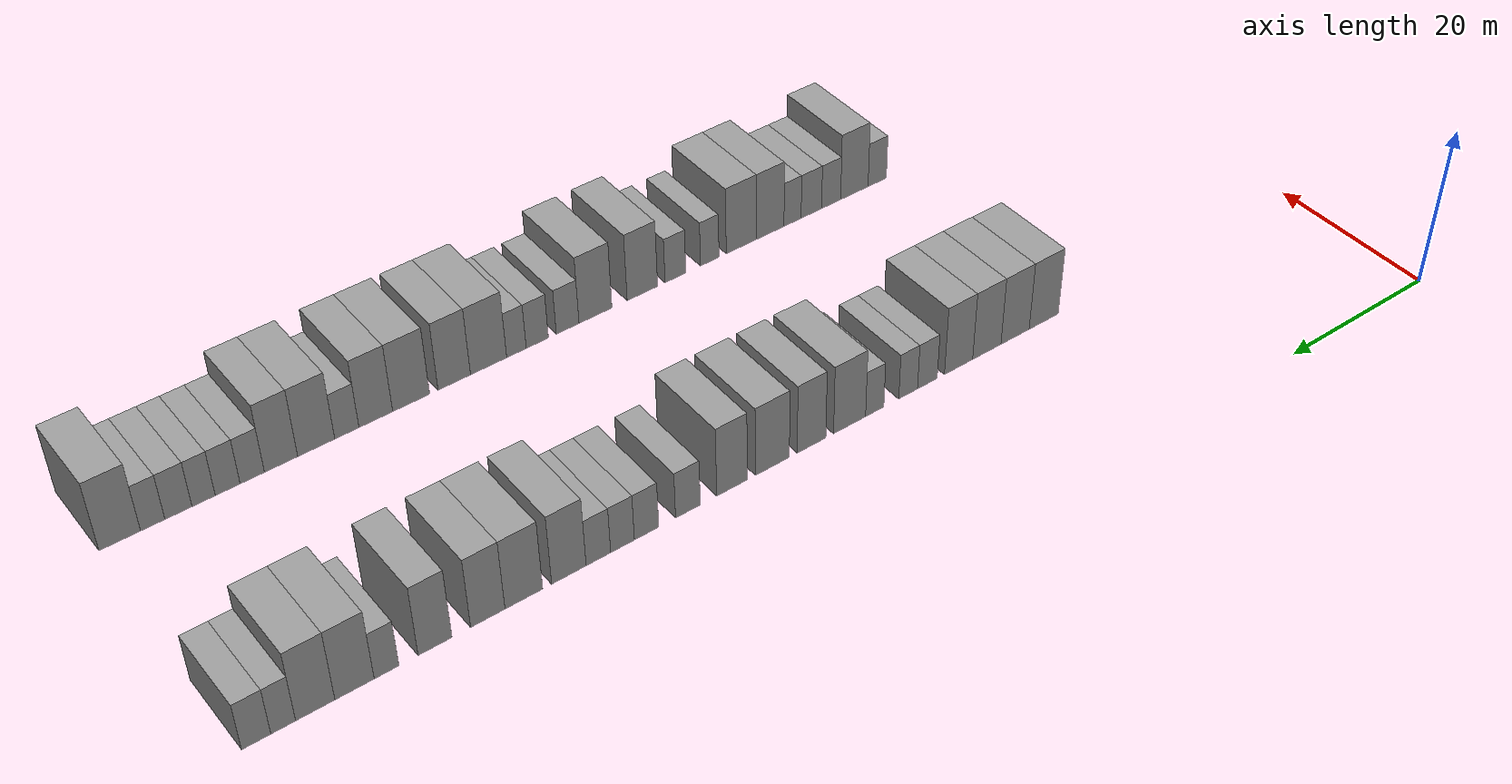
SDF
<sdf version="1.6">
 <world name="default">
  <model name="building_64">
   <static>1</static>
   <pose>25.0000 37.3057 0 0.000000 0.000000 0.000000</pose>
   <link name="link">
    <pose>0 0 4.50 0 0 0</pose>
    <collision name="collision"><geometry><box><size>10.0000 4.2083 9.0000</size></box></geometry></collision>
    <visual name="visual">
     <cast_shadows>0</cast_shadows>
     <geometry><box><size>10.0000 4.2083 9.0000</size></box></geometry>
     <material>
      <script>
       <uri>model://grey_wall/materials/scripts</uri>
       <uri>model://grey_wall/materials/textures</uri>
       <name>vrc/grey_wall</name>
      </script>
     </material>
    </visual>
   </link>
  </model>
  <model name="building_65">
   <static>1</static>
   <pose>25.0000 41.4210 0 0.000000 0.000000 0.000000</pose>
   <link name="link">
    <pose>0 0 4.50 0 0 0</pose>
    <collision name="collision"><geometry><box><size>10.0000 4.0222 9.0000</size></box></geometry></collision>
    <visual name="visual">
     <cast_shadows>0</cast_shadows>
     <geometry><box><size>10.0000 4.0222 9.0000</size></box></geometry>
     <material>
      <script>
       <uri>model://grey_wall/materials/scripts</uri>
       <uri>model://grey_wall/materials/textures</uri>
       <name>vrc/grey_wall</name>
      </script>
     </material>
    </visual>
   </link>
  </model>
  <model name="building_66">
   <static>1</static>
   <pose>25.0000 45.4222 0 0.000000 0.000000 0.000000</pose>
   <link name="link">
    <pose>0 0 4.50 0 0 0</pose>
    <collision name="collision"><geometry><box><size>10.0000 3.9803 9.0000</size></box></geometry></collision>
    <visual name="visual">
     <cast_shadows>0</cast_shadows>
     <geometry><box><size>10.0000 3.9803 9.0000</size></box></geometry>
     <material>
      <script>
       <uri>model://grey_wall/materials/scripts</uri>
       <uri>model://grey_wall/materials/textures</uri>
       <name>vrc/grey_wall</name>
      </script>
     </material>
    </visual>
   </link>
  </model>
  <model name="building_67">
   <static>1</static>
   <pose>25.0000 49.3647 0 0.000000 0.000000 0.000000</pose>
   <link name="link">
    <pose>0 0 4.50 0 0 0</pose>
    <collision name="collision"><geometry><box><size>10.0000 3.9045 9.0000</size></box></geometry></collision>
    <visual name="visual">
     <cast_shadows>0</cast_shadows>
     <geometry><box><size>10.0000 3.9045 9.0000</size></box></geometry>
     <material>
      <script>
       <uri>model://grey_wall/materials/scripts</uri>
       <uri>model://grey_wall/materials/textures</uri>
       <name>vrc/grey_wall</name>
      </script>
     </material>
    </visual>
   </link>
  </model>
  <model name="building_68">
   <static>1</static>
   <pose>25.0000 53.6548 0 0.000000 0.000000 0.000000</pose>
   <link name="link">
    <pose>0 0 3.00 0 0 0</pose>
    <collision name="collision"><geometry><box><size>10.0000 2.6757 6.0000</size></box></geometry></collision>
    <visual name="visual">
     <cast_shadows>0</cast_shadows>
     <geometry><box><size>10.0000 2.6757 6.0000</size></box></geometry>
     <material>
      <script>
       <uri>model://grey_wall/materials/scripts</uri>
       <uri>model://grey_wall/materials/textures</uri>
       <name>vrc/grey_wall</name>
      </script>
     </material>
    </visual>
   </link>
  </model>
  <model name="building_69">
   <static>1</static>
   <pose>25.0000 56.2547 0 0.000000 0.000000 0.000000</pose>
   <link name="link">
    <pose>0 0 3.00 0 0 0</pose>
    <collision name="collision"><geometry><box><size>10.0000 2.5243 6.0000</size></box></geometry></collision>
    <visual name="visual">
     <cast_shadows>0</cast_shadows>
     <geometry><box><size>10.0000 2.5243 6.0000</size></box></geometry>
     <material>
      <script>
       <uri>model://grey_wall/materials/scripts</uri>
       <uri>model://grey_wall/materials/textures</uri>
       <name>vrc/grey_wall</name>
      </script>
     </material>
    </visual>
   </link>
  </model>
  <model name="building_70">
   <static>1</static>
   <pose>25.0000 60.7227 0 0.000000 0.000000 0.000000</pose>
   <link name="link">
    <pose>0 0 3.00 0 0 0</pose>
    <collision name="collision"><geometry><box><size>10.0000 2.4117 6.0000</size></box></geometry></collision>
    <visual name="visual">
     <cast_shadows>0</cast_shadows>
     <geometry><box><size>10.0000 2.4117 6.0000</size></box></geometry>
     <material>
      <script>
       <uri>model://grey_wall/materials/scripts</uri>
       <uri>model://grey_wall/materials/textures</uri>
       <name>vrc/grey_wall</name>
      </script>
     </material>
    </visual>
   </link>
  </model>
  <model name="building_71">
   <static>1</static>
   <pose>25.0000 64.0169 0 0.000000 0.000000 0.000000</pose>
   <link name="link">
    <pose>0 0 4.50 0 0 0</pose>
    <collision name="collision"><geometry><box><size>10.0000 4.1768 9.0000</size></box></geometry></collision>
    <visual name="visual">
     <cast_shadows>0</cast_shadows>
     <geometry><box><size>10.0000 4.1768 9.0000</size></box></geometry>
     <material>
      <script>
       <uri>model://grey_wall/materials/scripts</uri>
       <uri>model://grey_wall/materials/textures</uri>
       <name>vrc/grey_wall</name>
      </script>
     </material>
    </visual>
   </link>
  </model>
  <model name="building_72">
   <static>1</static>
   <pose>25.0000 68.9318 0 0.000000 0.000000 0.000000</pose>
   <link name="link">
    <pose>0 0 4.50 0 0 0</pose>
    <collision name="collision"><geometry><box><size>10.0000 3.6529 9.0000</size></box></geometry></collision>
    <visual name="visual">
     <cast_shadows>0</cast_shadows>
     <geometry><box><size>10.0000 3.6529 9.0000</size></box></geometry>
     <material>
      <script>
       <uri>model://grey_wall/materials/scripts</uri>
       <uri>model://grey_wall/materials/textures</uri>
       <name>vrc/grey_wall</name>
      </script>
     </material>
    </visual>
   </link>
  </model>
  <model name="building_73">
   <static>1</static>
   <pose>25.0000 73.8826 0 0.000000 0.000000 0.000000</pose>
   <link name="link">
    <pose>0 0 4.50 0 0 0</pose>
    <collision name="collision"><geometry><box><size>10.0000 4.2488 9.0000</size></box></geometry></collision>
    <visual name="visual">
     <cast_shadows>0</cast_shadows>
     <geometry><box><size>10.0000 4.2488 9.0000</size></box></geometry>
     <material>
      <script>
       <uri>model://grey_wall/materials/scripts</uri>
       <uri>model://grey_wall/materials/textures</uri>
       <name>vrc/grey_wall</name>
      </script>
     </material>
    </visual>
   </link>
  </model>
  <model name="building_74">
   <static>1</static>
   <pose>25.0000 78.8951 0 0.000000 0.000000 0.000000</pose>
   <link name="link">
    <pose>0 0 4.50 0 0 0</pose>
    <collision name="collision"><geometry><box><size>10.0000 3.7763 9.0000</size></box></geometry></collision>
    <visual name="visual">
     <cast_shadows>0</cast_shadows>
     <geometry><box><size>10.0000 3.7763 9.0000</size></box></geometry>
     <material>
      <script>
       <uri>model://grey_wall/materials/scripts</uri>
       <uri>model://grey_wall/materials/textures</uri>
       <name>vrc/grey_wall</name>
      </script>
     </material>
    </visual>
   </link>
  </model>
  <model name="building_75">
   <static>1</static>
   <pose>25.0000 84.2677 0 0.000000 0.000000 0.000000</pose>
   <link name="link">
    <pose>0 0 3.00 0 0 0</pose>
    <collision name="collision"><geometry><box><size>10.0000 2.9688 6.0000</size></box></geometry></collision>
    <visual name="visual">
     <cast_shadows>0</cast_shadows>
     <geometry><box><size>10.0000 2.9688 6.0000</size></box></geometry>
     <material>
      <script>
       <uri>model://grey_wall/materials/scripts</uri>
       <uri>model://grey_wall/materials/textures</uri>
       <name>vrc/grey_wall</name>
      </script>
     </material>
    </visual>
   </link>
  </model>
  <model name="building_76">
   <static>1</static>
   <pose>25.0000 89.1856 0 0.000000 0.000000 0.000000</pose>
   <link name="link">
    <pose>0 0 3.00 0 0 0</pose>
    <collision name="collision"><geometry><box><size>10.0000 2.8670 6.0000</size></box></geometry></collision>
    <visual name="visual">
     <cast_shadows>0</cast_shadows>
     <geometry><box><size>10.0000 2.8670 6.0000</size></box></geometry>
     <material>
      <script>
       <uri>model://grey_wall/materials/scripts</uri>
       <uri>model://grey_wall/materials/textures</uri>
       <name>vrc/grey_wall</name>
      </script>
     </material>
    </visual>
   </link>
  </model>
  <model name="building_77">
   <static>1</static>
   <pose>25.0000 91.9972 0 0.000000 0.000000 0.000000</pose>
   <link name="link">
    <pose>0 0 3.00 0 0 0</pose>
    <collision name="collision"><geometry><box><size>10.0000 2.7563 6.0000</size></box></geometry></collision>
    <visual name="visual">
     <cast_shadows>0</cast_shadows>
     <geometry><box><size>10.0000 2.7563 6.0000</size></box></geometry>
     <material>
      <script>
       <uri>model://grey_wall/materials/scripts</uri>
       <uri>model://grey_wall/materials/textures</uri>
       <name>vrc/grey_wall</name>
      </script>
     </material>
    </visual>
   </link>
  </model>
  <model name="building_78">
   <static>1</static>
   <pose>25.0000 94.7882 0 0.000000 0.000000 0.000000</pose>
   <link name="link">
    <pose>0 0 3.00 0 0 0</pose>
    <collision name="collision"><geometry><box><size>10.0000 2.8256 6.0000</size></box></geometry></collision>
    <visual name="visual">
     <cast_shadows>0</cast_shadows>
     <geometry><box><size>10.0000 2.8256 6.0000</size></box></geometry>
     <material>
      <script>
       <uri>model://grey_wall/materials/scripts</uri>
       <uri>model://grey_wall/materials/textures</uri>
       <name>vrc/grey_wall</name>
      </script>
     </material>
    </visual>
   </link>
  </model>
  <model name="building_79">
   <static>1</static>
   <pose>25.0000 98.1517 0 0.000000 0.000000 0.000000</pose>
   <link name="link">
    <pose>0 0 4.50 0 0 0</pose>
    <collision name="collision"><geometry><box><size>10.0000 3.9015 9.0000</size></box></geometry></collision>
    <visual name="visual">
     <cast_shadows>0</cast_shadows>
     <geometry><box><size>10.0000 3.9015 9.0000</size></box></geometry>
     <material>
      <script>
       <uri>model://grey_wall/materials/scripts</uri>
       <uri>model://grey_wall/materials/textures</uri>
       <name>vrc/grey_wall</name>
      </script>
     </material>
    </visual>
   </link>
  </model>
  <model name="building_80">
   <static>1</static>
   <pose>25.0000 103.1936 0 0.000000 0.000000 0.000000</pose>
   <link name="link">
    <pose>0 0 4.50 0 0 0</pose>
    <collision name="collision"><geometry><box><size>10.0000 4.1823 9.0000</size></box></geometry></collision>
    <visual name="visual">
     <cast_shadows>0</cast_shadows>
     <geometry><box><size>10.0000 4.1823 9.0000</size></box></geometry>
     <material>
      <script>
       <uri>model://grey_wall/materials/scripts</uri>
       <uri>model://grey_wall/materials/textures</uri>
       <name>vrc/grey_wall</name>
      </script>
     </material>
    </visual>
   </link>
  </model>
  <model name="building_81">
   <static>1</static>
   <pose>25.0000 107.1565 0 0.000000 0.000000 0.000000</pose>
   <link name="link">
    <pose>0 0 4.50 0 0 0</pose>
    <collision name="collision"><geometry><box><size>10.0000 3.7436 9.0000</size></box></geometry></collision>
    <visual name="visual">
     <cast_shadows>0</cast_shadows>
     <geometry><box><size>10.0000 3.7436 9.0000</size></box></geometry>
     <material>
      <script>
       <uri>model://grey_wall/materials/scripts</uri>
       <uri>model://grey_wall/materials/textures</uri>
       <name>vrc/grey_wall</name>
      </script>
     </material>
    </visual>
   </link>
  </model>
  <model name="building_82">
   <static>1</static>
   <pose>25.0000 112.8291 0 0.000000 0.000000 0.000000</pose>
   <link name="link">
    <pose>0 0 4.50 0 0 0</pose>
    <collision name="collision"><geometry><box><size>10.0000 3.6015 9.0000</size></box></geometry></collision>
    <visual name="visual">
     <cast_shadows>0</cast_shadows>
     <geometry><box><size>10.0000 3.6015 9.0000</size></box></geometry>
     <material>
      <script>
       <uri>model://grey_wall/materials/scripts</uri>
       <uri>model://grey_wall/materials/textures</uri>
       <name>vrc/grey_wall</name>
      </script>
     </material>
    </visual>
   </link>
  </model>
  <model name="building_83">
   <static>1</static>
   <pose>25.0000 117.9180 0 0.000000 0.000000 0.000000</pose>
   <link name="link">
    <pose>0 0 3.00 0 0 0</pose>
    <collision name="collision"><geometry><box><size>10.0000 2.5764 6.0000</size></box></geometry></collision>
    <visual name="visual">
     <cast_shadows>0</cast_shadows>
     <geometry><box><size>10.0000 2.5764 6.0000</size></box></geometry>
     <material>
      <script>
       <uri>model://grey_wall/materials/scripts</uri>
       <uri>model://grey_wall/materials/textures</uri>
       <name>vrc/grey_wall</name>
      </script>
     </material>
    </visual>
   </link>
  </model>
  <model name="building_84">
   <static>1</static>
   <pose>25.0000 121.2153 0 0.000000 0.000000 0.000000</pose>
   <link name="link">
    <pose>0 0 4.50 0 0 0</pose>
    <collision name="collision"><geometry><box><size>10.0000 4.0181 9.0000</size></box></geometry></collision>
    <visual name="visual">
     <cast_shadows>0</cast_shadows>
     <geometry><box><size>10.0000 4.0181 9.0000</size></box></geometry>
     <material>
      <script>
       <uri>model://grey_wall/materials/scripts</uri>
       <uri>model://grey_wall/materials/textures</uri>
       <name>vrc/grey_wall</name>
      </script>
     </material>
    </visual>
   </link>
  </model>
  <model name="building_85">
   <static>1</static>
   <pose>25.0000 125.1959 0 0.000000 0.000000 0.000000</pose>
   <link name="link">
    <pose>0 0 4.50 0 0 0</pose>
    <collision name="collision"><geometry><box><size>10.0000 3.9432 9.0000</size></box></geometry></collision>
    <visual name="visual">
     <cast_shadows>0</cast_shadows>
     <geometry><box><size>10.0000 3.9432 9.0000</size></box></geometry>
     <material>
      <script>
       <uri>model://grey_wall/materials/scripts</uri>
       <uri>model://grey_wall/materials/textures</uri>
       <name>vrc/grey_wall</name>
      </script>
     </material>
    </visual>
   </link>
  </model>
  <model name="building_86">
   <static>1</static>
   <pose>25.0000 128.3918 0 0.000000 0.000000 0.000000</pose>
   <link name="link">
    <pose>0 0 3.00 0 0 0</pose>
    <collision name="collision"><geometry><box><size>10.0000 2.4485 6.0000</size></box></geometry></collision>
    <visual name="visual">
     <cast_shadows>0</cast_shadows>
     <geometry><box><size>10.0000 2.4485 6.0000</size></box></geometry>
     <material>
      <script>
       <uri>model://grey_wall/materials/scripts</uri>
       <uri>model://grey_wall/materials/textures</uri>
       <name>vrc/grey_wall</name>
      </script>
     </material>
    </visual>
   </link>
  </model>
  <model name="building_87">
   <static>1</static>
   <pose>25.0000 131.0483 0 0.000000 0.000000 0.000000</pose>
   <link name="link">
    <pose>0 0 3.00 0 0 0</pose>
    <collision name="collision"><geometry><box><size>10.0000 2.8646 6.0000</size></box></geometry></collision>
    <visual name="visual">
     <cast_shadows>0</cast_shadows>
     <geometry><box><size>10.0000 2.8646 6.0000</size></box></geometry>
     <material>
      <script>
       <uri>model://grey_wall/materials/scripts</uri>
       <uri>model://grey_wall/materials/textures</uri>
       <name>vrc/grey_wall</name>
      </script>
     </material>
    </visual>
   </link>
  </model>
  <model name="building_174">
   <static>1</static>
   <pose>55.0000 35.7486 0 0.000000 0.000000 0.000000</pose>
   <link name="link">
    <pose>0 0 3.00 0 0 0</pose>
    <collision name="collision"><geometry><box><size>10.0000 2.7242 6.0000</size></box></geometry></collision>
    <visual name="visual">
     <cast_shadows>0</cast_shadows>
     <geometry><box><size>10.0000 2.7242 6.0000</size></box></geometry>
     <material>
      <script>
       <uri>model://grey_wall/materials/scripts</uri>
       <uri>model://grey_wall/materials/textures</uri>
       <name>vrc/grey_wall</name>
      </script>
     </material>
    </visual>
   </link>
  </model>
  <model name="building_175">
   <static>1</static>
   <pose>55.0000 39.1341 0 0.000000 0.000000 0.000000</pose>
   <link name="link">
    <pose>0 0 4.50 0 0 0</pose>
    <collision name="collision"><geometry><box><size>10.0000 4.0468 9.0000</size></box></geometry></collision>
    <visual name="visual">
     <cast_shadows>0</cast_shadows>
     <geometry><box><size>10.0000 4.0468 9.0000</size></box></geometry>
     <material>
      <script>
       <uri>model://grey_wall/materials/scripts</uri>
       <uri>model://grey_wall/materials/textures</uri>
       <name>vrc/grey_wall</name>
      </script>
     </material>
    </visual>
   </link>
  </model>
  <model name="building_176">
   <static>1</static>
   <pose>55.0000 42.5392 0 0.000000 0.000000 0.000000</pose>
   <link name="link">
    <pose>0 0 3.00 0 0 0</pose>
    <collision name="collision"><geometry><box><size>10.0000 2.7634 6.0000</size></box></geometry></collision>
    <visual name="visual">
     <cast_shadows>0</cast_shadows>
     <geometry><box><size>10.0000 2.7634 6.0000</size></box></geometry>
     <material>
      <script>
       <uri>model://grey_wall/materials/scripts</uri>
       <uri>model://grey_wall/materials/textures</uri>
       <name>vrc/grey_wall</name>
      </script>
     </material>
    </visual>
   </link>
  </model>
  <model name="building_177">
   <static>1</static>
   <pose>55.0000 45.4020 0 0.000000 0.000000 0.000000</pose>
   <link name="link">
    <pose>0 0 3.00 0 0 0</pose>
    <collision name="collision"><geometry><box><size>10.0000 2.9623 6.0000</size></box></geometry></collision>
    <visual name="visual">
     <cast_shadows>0</cast_shadows>
     <geometry><box><size>10.0000 2.9623 6.0000</size></box></geometry>
     <material>
      <script>
       <uri>model://grey_wall/materials/scripts</uri>
       <uri>model://grey_wall/materials/textures</uri>
       <name>vrc/grey_wall</name>
      </script>
     </material>
    </visual>
   </link>
  </model>
  <model name="building_178">
   <static>1</static>
   <pose>55.0000 48.1084 0 0.000000 0.000000 0.000000</pose>
   <link name="link">
    <pose>0 0 3.00 0 0 0</pose>
    <collision name="collision"><geometry><box><size>10.0000 2.4506 6.0000</size></box></geometry></collision>
    <visual name="visual">
     <cast_shadows>0</cast_shadows>
     <geometry><box><size>10.0000 2.4506 6.0000</size></box></geometry>
     <material>
      <script>
       <uri>model://grey_wall/materials/scripts</uri>
       <uri>model://grey_wall/materials/textures</uri>
       <name>vrc/grey_wall</name>
      </script>
     </material>
    </visual>
   </link>
  </model>
  <model name="building_179">
   <static>1</static>
   <pose>55.0000 51.2631 0 0.000000 0.000000 0.000000</pose>
   <link name="link">
    <pose>0 0 4.50 0 0 0</pose>
    <collision name="collision"><geometry><box><size>10.0000 3.8587 9.0000</size></box></geometry></collision>
    <visual name="visual">
     <cast_shadows>0</cast_shadows>
     <geometry><box><size>10.0000 3.8587 9.0000</size></box></geometry>
     <material>
      <script>
       <uri>model://grey_wall/materials/scripts</uri>
       <uri>model://grey_wall/materials/textures</uri>
       <name>vrc/grey_wall</name>
      </script>
     </material>
    </visual>
   </link>
  </model>
  <model name="building_180">
   <static>1</static>
   <pose>55.0000 55.3109 0 0.000000 0.000000 0.000000</pose>
   <link name="link">
    <pose>0 0 4.50 0 0 0</pose>
    <collision name="collision"><geometry><box><size>10.0000 4.2369 9.0000</size></box></geometry></collision>
    <visual name="visual">
     <cast_shadows>0</cast_shadows>
     <geometry><box><size>10.0000 4.2369 9.0000</size></box></geometry>
     <material>
      <script>
       <uri>model://grey_wall/materials/scripts</uri>
       <uri>model://grey_wall/materials/textures</uri>
       <name>vrc/grey_wall</name>
      </script>
     </material>
    </visual>
   </link>
  </model>
  <model name="building_181">
   <static>1</static>
   <pose>55.0000 59.6956 0 0.000000 0.000000 0.000000</pose>
   <link name="link">
    <pose>0 0 3.00 0 0 0</pose>
    <collision name="collision"><geometry><box><size>10.0000 2.5326 6.0000</size></box></geometry></collision>
    <visual name="visual">
     <cast_shadows>0</cast_shadows>
     <geometry><box><size>10.0000 2.5326 6.0000</size></box></geometry>
     <material>
      <script>
       <uri>model://grey_wall/materials/scripts</uri>
       <uri>model://grey_wall/materials/textures</uri>
       <name>vrc/grey_wall</name>
      </script>
     </material>
    </visual>
   </link>
  </model>
  <model name="building_182">
   <static>1</static>
   <pose>55.0000 64.3598 0 0.000000 0.000000 0.000000</pose>
   <link name="link">
    <pose>0 0 3.00 0 0 0</pose>
    <collision name="collision"><geometry><box><size>10.0000 2.7957 6.0000</size></box></geometry></collision>
    <visual name="visual">
     <cast_shadows>0</cast_shadows>
     <geometry><box><size>10.0000 2.7957 6.0000</size></box></geometry>
     <material>
      <script>
       <uri>model://grey_wall/materials/scripts</uri>
       <uri>model://grey_wall/materials/textures</uri>
       <name>vrc/grey_wall</name>
      </script>
     </material>
    </visual>
   </link>
  </model>
  <model name="building_183">
   <static>1</static>
   <pose>55.0000 68.7739 0 0.000000 0.000000 0.000000</pose>
   <link name="link">
    <pose>0 0 4.50 0 0 0</pose>
    <collision name="collision"><geometry><box><size>10.0000 4.0324 9.0000</size></box></geometry></collision>
    <visual name="visual">
     <cast_shadows>0</cast_shadows>
     <geometry><box><size>10.0000 4.0324 9.0000</size></box></geometry>
     <material>
      <script>
       <uri>model://grey_wall/materials/scripts</uri>
       <uri>model://grey_wall/materials/textures</uri>
       <name>vrc/grey_wall</name>
      </script>
     </material>
    </visual>
   </link>
  </model>
  <model name="building_184">
   <static>1</static>
   <pose>55.0000 74.9194 0 0.000000 0.000000 0.000000</pose>
   <link name="link">
    <pose>0 0 4.50 0 0 0</pose>
    <collision name="collision"><geometry><box><size>10.0000 4.2587 9.0000</size></box></geometry></collision>
    <visual name="visual">
     <cast_shadows>0</cast_shadows>
     <geometry><box><size>10.0000 4.2587 9.0000</size></box></geometry>
     <material>
      <script>
       <uri>model://grey_wall/materials/scripts</uri>
       <uri>model://grey_wall/materials/textures</uri>
       <name>vrc/grey_wall</name>
      </script>
     </material>
    </visual>
   </link>
  </model>
  <model name="building_185">
   <static>1</static>
   <pose>55.0000 78.4982 0 0.000000 0.000000 0.000000</pose>
   <link name="link">
    <pose>0 0 3.00 0 0 0</pose>
    <collision name="collision"><geometry><box><size>10.0000 2.8988 6.0000</size></box></geometry></collision>
    <visual name="visual">
     <cast_shadows>0</cast_shadows>
     <geometry><box><size>10.0000 2.8988 6.0000</size></box></geometry>
     <material>
      <script>
       <uri>model://grey_wall/materials/scripts</uri>
       <uri>model://grey_wall/materials/textures</uri>
       <name>vrc/grey_wall</name>
      </script>
     </material>
    </visual>
   </link>
  </model>
  <model name="building_186">
   <static>1</static>
   <pose>55.0000 82.3415 0 0.000000 0.000000 0.000000</pose>
   <link name="link">
    <pose>0 0 3.00 0 0 0</pose>
    <collision name="collision"><geometry><box><size>10.0000 2.7878 6.0000</size></box></geometry></collision>
    <visual name="visual">
     <cast_shadows>0</cast_shadows>
     <geometry><box><size>10.0000 2.7878 6.0000</size></box></geometry>
     <material>
      <script>
       <uri>model://grey_wall/materials/scripts</uri>
       <uri>model://grey_wall/materials/textures</uri>
       <name>vrc/grey_wall</name>
      </script>
     </material>
    </visual>
   </link>
  </model>
  <model name="building_187">
   <static>1</static>
   <pose>55.0000 84.9516 0 0.000000 0.000000 0.000000</pose>
   <link name="link">
    <pose>0 0 3.00 0 0 0</pose>
    <collision name="collision"><geometry><box><size>10.0000 2.4324 6.0000</size></box></geometry></collision>
    <visual name="visual">
     <cast_shadows>0</cast_shadows>
     <geometry><box><size>10.0000 2.4324 6.0000</size></box></geometry>
     <material>
      <script>
       <uri>model://grey_wall/materials/scripts</uri>
       <uri>model://grey_wall/materials/textures</uri>
       <name>vrc/grey_wall</name>
      </script>
     </material>
    </visual>
   </link>
  </model>
  <model name="building_188">
   <static>1</static>
   <pose>55.0000 88.3906 0 0.000000 0.000000 0.000000</pose>
   <link name="link">
    <pose>0 0 4.50 0 0 0</pose>
    <collision name="collision"><geometry><box><size>10.0000 4.4454 9.0000</size></box></geometry></collision>
    <visual name="visual">
     <cast_shadows>0</cast_shadows>
     <geometry><box><size>10.0000 4.4454 9.0000</size></box></geometry>
     <material>
      <script>
       <uri>model://grey_wall/materials/scripts</uri>
       <uri>model://grey_wall/materials/textures</uri>
       <name>vrc/grey_wall</name>
      </script>
     </material>
    </visual>
   </link>
  </model>
  <model name="building_189">
   <static>1</static>
   <pose>55.0000 92.5746 0 0.000000 0.000000 0.000000</pose>
   <link name="link">
    <pose>0 0 4.50 0 0 0</pose>
    <collision name="collision"><geometry><box><size>10.0000 3.9228 9.0000</size></box></geometry></collision>
    <visual name="visual">
     <cast_shadows>0</cast_shadows>
     <geometry><box><size>10.0000 3.9228 9.0000</size></box></geometry>
     <material>
      <script>
       <uri>model://grey_wall/materials/scripts</uri>
       <uri>model://grey_wall/materials/textures</uri>
       <name>vrc/grey_wall</name>
      </script>
     </material>
    </visual>
   </link>
  </model>
  <model name="building_190">
   <static>1</static>
   <pose>55.0000 97.7264 0 0.000000 0.000000 0.000000</pose>
   <link name="link">
    <pose>0 0 4.50 0 0 0</pose>
    <collision name="collision"><geometry><box><size>10.0000 4.3808 9.0000</size></box></geometry></collision>
    <visual name="visual">
     <cast_shadows>0</cast_shadows>
     <geometry><box><size>10.0000 4.3808 9.0000</size></box></geometry>
     <material>
      <script>
       <uri>model://grey_wall/materials/scripts</uri>
       <uri>model://grey_wall/materials/textures</uri>
       <name>vrc/grey_wall</name>
      </script>
     </material>
    </visual>
   </link>
  </model>
  <model name="building_191">
   <static>1</static>
   <pose>55.0000 101.8810 0 0.000000 0.000000 0.000000</pose>
   <link name="link">
    <pose>0 0 4.50 0 0 0</pose>
    <collision name="collision"><geometry><box><size>10.0000 3.9283 9.0000</size></box></geometry></collision>
    <visual name="visual">
     <cast_shadows>0</cast_shadows>
     <geometry><box><size>10.0000 3.9283 9.0000</size></box></geometry>
     <material>
      <script>
       <uri>model://grey_wall/materials/scripts</uri>
       <uri>model://grey_wall/materials/textures</uri>
       <name>vrc/grey_wall</name>
      </script>
     </material>
    </visual>
   </link>
  </model>
  <model name="building_192">
   <static>1</static>
   <pose>55.0000 105.2362 0 0.000000 0.000000 0.000000</pose>
   <link name="link">
    <pose>0 0 3.00 0 0 0</pose>
    <collision name="collision"><geometry><box><size>10.0000 2.7821 6.0000</size></box></geometry></collision>
    <visual name="visual">
     <cast_shadows>0</cast_shadows>
     <geometry><box><size>10.0000 2.7821 6.0000</size></box></geometry>
     <material>
      <script>
       <uri>model://grey_wall/materials/scripts</uri>
       <uri>model://grey_wall/materials/textures</uri>
       <name>vrc/grey_wall</name>
      </script>
     </material>
    </visual>
   </link>
  </model>
  <model name="building_193">
   <static>1</static>
   <pose>55.0000 108.7216 0 0.000000 0.000000 0.000000</pose>
   <link name="link">
    <pose>0 0 4.50 0 0 0</pose>
    <collision name="collision"><geometry><box><size>10.0000 4.1889 9.0000</size></box></geometry></collision>
    <visual name="visual">
     <cast_shadows>0</cast_shadows>
     <geometry><box><size>10.0000 4.1889 9.0000</size></box></geometry>
     <material>
      <script>
       <uri>model://grey_wall/materials/scripts</uri>
       <uri>model://grey_wall/materials/textures</uri>
       <name>vrc/grey_wall</name>
      </script>
     </material>
    </visual>
   </link>
  </model>
  <model name="building_194">
   <static>1</static>
   <pose>55.0000 112.6707 0 0.000000 0.000000 0.000000</pose>
   <link name="link">
    <pose>0 0 4.50 0 0 0</pose>
    <collision name="collision"><geometry><box><size>10.0000 3.7093 9.0000</size></box></geometry></collision>
    <visual name="visual">
     <cast_shadows>0</cast_shadows>
     <geometry><box><size>10.0000 3.7093 9.0000</size></box></geometry>
     <material>
      <script>
       <uri>model://grey_wall/materials/scripts</uri>
       <uri>model://grey_wall/materials/textures</uri>
       <name>vrc/grey_wall</name>
      </script>
     </material>
    </visual>
   </link>
  </model>
  <model name="building_195">
   <static>1</static>
   <pose>55.0000 115.8642 0 0.000000 0.000000 0.000000</pose>
   <link name="link">
    <pose>0 0 3.00 0 0 0</pose>
    <collision name="collision"><geometry><box><size>10.0000 2.6778 6.0000</size></box></geometry></collision>
    <visual name="visual">
     <cast_shadows>0</cast_shadows>
     <geometry><box><size>10.0000 2.6778 6.0000</size></box></geometry>
     <material>
      <script>
       <uri>model://grey_wall/materials/scripts</uri>
       <uri>model://grey_wall/materials/textures</uri>
       <name>vrc/grey_wall</name>
      </script>
     </material>
    </visual>
   </link>
  </model>
  <model name="building_196">
   <static>1</static>
   <pose>55.0000 118.5560 0 0.000000 0.000000 0.000000</pose>
   <link name="link">
    <pose>0 0 3.00 0 0 0</pose>
    <collision name="collision"><geometry><box><size>10.0000 2.7057 6.0000</size></box></geometry></collision>
    <visual name="visual">
     <cast_shadows>0</cast_shadows>
     <geometry><box><size>10.0000 2.7057 6.0000</size></box></geometry>
     <material>
      <script>
       <uri>model://grey_wall/materials/scripts</uri>
       <uri>model://grey_wall/materials/textures</uri>
       <name>vrc/grey_wall</name>
      </script>
     </material>
    </visual>
   </link>
  </model>
  <model name="building_197">
   <static>1</static>
   <pose>55.0000 121.1563 0 0.000000 0.000000 0.000000</pose>
   <link name="link">
    <pose>0 0 3.00 0 0 0</pose>
    <collision name="collision"><geometry><box><size>10.0000 2.4950 6.0000</size></box></geometry></collision>
    <visual name="visual">
     <cast_shadows>0</cast_shadows>
     <geometry><box><size>10.0000 2.4950 6.0000</size></box></geometry>
     <material>
      <script>
       <uri>model://grey_wall/materials/scripts</uri>
       <uri>model://grey_wall/materials/textures</uri>
       <name>vrc/grey_wall</name>
      </script>
     </material>
    </visual>
   </link>
  </model>
  <model name="building_198">
   <static>1</static>
   <pose>55.0000 123.8505 0 0.000000 0.000000 0.000000</pose>
   <link name="link">
    <pose>0 0 3.00 0 0 0</pose>
    <collision name="collision"><geometry><box><size>10.0000 2.8934 6.0000</size></box></geometry></collision>
    <visual name="visual">
     <cast_shadows>0</cast_shadows>
     <geometry><box><size>10.0000 2.8934 6.0000</size></box></geometry>
     <material>
      <script>
       <uri>model://grey_wall/materials/scripts</uri>
       <uri>model://grey_wall/materials/textures</uri>
       <name>vrc/grey_wall</name>
      </script>
     </material>
    </visual>
   </link>
  </model>
  <model name="building_199">
   <static>1</static>
   <pose>55.0000 126.5776 0 0.000000 0.000000 0.000000</pose>
   <link name="link">
    <pose>0 0 3.00 0 0 0</pose>
    <collision name="collision"><geometry><box><size>10.0000 2.5608 6.0000</size></box></geometry></collision>
    <visual name="visual">
     <cast_shadows>0</cast_shadows>
     <geometry><box><size>10.0000 2.5608 6.0000</size></box></geometry>
     <material>
      <script>
       <uri>model://grey_wall/materials/scripts</uri>
       <uri>model://grey_wall/materials/textures</uri>
       <name>vrc/grey_wall</name>
      </script>
     </material>
    </visual>
   </link>
  </model>
  <model name="building_200">
   <static>1</static>
   <pose>55.0000 130.0183 0 0.000000 0.000000 0.000000</pose>
   <link name="link">
    <pose>0 0 4.50 0 0 0</pose>
    <collision name="collision"><geometry><box><size>10.0000 4.3205 9.0000</size></box></geometry></collision>
    <visual name="visual">
     <cast_shadows>0</cast_shadows>
     <geometry><box><size>10.0000 4.3205 9.0000</size></box></geometry>
     <material>
      <script>
       <uri>model://grey_wall/materials/scripts</uri>
       <uri>model://grey_wall/materials/textures</uri>
       <name>vrc/grey_wall</name>
      </script>
     </material>
    </visual>
   </link>
  </model>
 </world>
</sdf>
